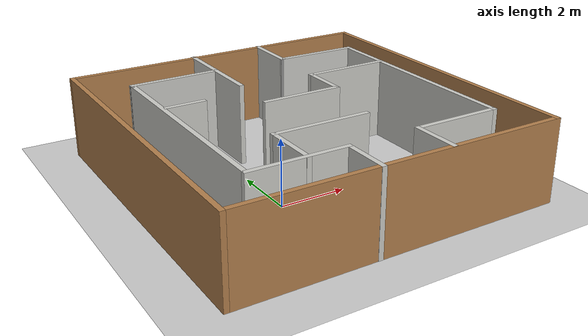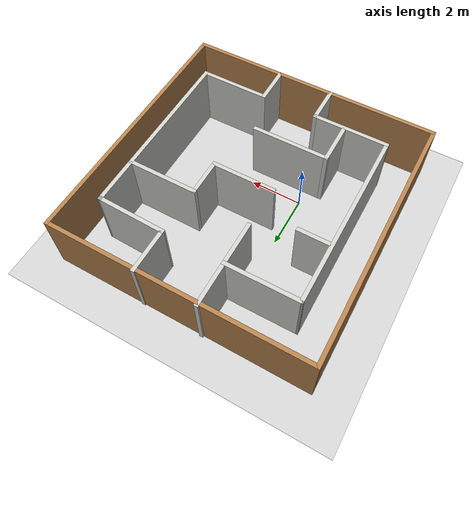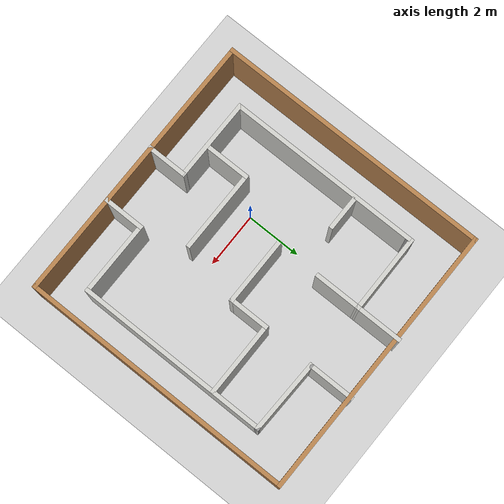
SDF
<?xml version="1.0" ?>
<sdf version="1.6">
  <world name="maze_model_world">
    <!-- include the maze model -->
    <include>
      <uri>model://maze_model</uri>
    </include>

    <!-- add a ground plane so the robot has a surface to spawn on -->
    <include>
      <uri>model://ground_plane</uri>
    </include>

    <!-- optional sun for lighting -->
    <include>
      <uri>model://sun</uri>
    </include>
  </world>
</sdf>

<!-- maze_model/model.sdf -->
<sdf version='1.7'>
  <model name='maze_model'>
    <pose>1.38886 1.37079 0 0 -0 0</pose>
    <link name='Wall_10'>
      <collision name='Wall_10_Collision'>
        <geometry>
          <box>
            <size>1.75 0.15 2.5</size>
          </box>
        </geometry>
        <pose>0 0 1.25 0 -0 0</pose>
      </collision>
      <visual name='Wall_10_Visual'>
        <pose>0 0 1.25 0 -0 0</pose>
        <geometry>
          <box>
            <size>1.75 0.15 2.5</size>
          </box>
        </geometry>
        <material>
          <script>
            <uri>file://media/materials/scripts/gazebo.material</uri>
            <name>Gazebo/CeilingTiled</name>
          </script>
          <ambient>1 1 1 1</ambient>
        </material>
        <meta>
          <layer>0</layer>
        </meta>
      </visual>
      <pose>1.43677 4.13293 0 0 -0 -1.5708</pose>
    </link>
    <link name='Wall_11'>
      <collision name='Wall_11_Collision'>
        <geometry>
          <box>
            <size>0.16 0.15 2.5</size>
          </box>
        </geometry>
        <pose>0 0 1.25 0 -0 0</pose>
      </collision>
      <visual name='Wall_11_Visual'>
        <pose>0 0 1.25 0 -0 0</pose>
        <geometry>
          <box>
            <size>0.16 0.15 2.5</size>
          </box>
        </geometry>
        <material>
          <script>
            <uri>file://media/materials/scripts/gazebo.material</uri>
            <name>Gazebo/Grey</name>
          </script>
          <ambient>1 1 1 1</ambient>
        </material>
        <meta>
          <layer>0</layer>
        </meta>
      </visual>
      <pose>1.44177 3.33292 0 0 -0 0</pose>
    </link>
    <link name='Wall_17'>
      <collision name='Wall_17_Collision'>
        <geometry>
          <box>
            <size>1.5 0.15 2.5</size>
          </box>
        </geometry>
        <pose>0 0 1.25 0 -0 0</pose>
      </collision>
      <visual name='Wall_17_Visual'>
        <pose>0 0 1.25 0 -0 0</pose>
        <geometry>
          <box>
            <size>1.5 0.15 2.5</size>
          </box>
        </geometry>
        <material>
          <script>
            <uri>file://media/materials/scripts/gazebo.material</uri>
            <name>Gazebo/CeilingTiled</name>
          </script>
          <ambient>1 1 1 1</ambient>
        </material>
        <meta>
          <layer>0</layer>
        </meta>
      </visual>
      <pose>-0.785026 -4.28437 0 0 -0 1.5708</pose>
    </link>
    <link name='Wall_18'>
      <collision name='Wall_18_Collision'>
        <geometry>
          <box>
            <size>3 0.15 2.5</size>
          </box>
        </geometry>
        <pose>0 0 1.25 0 -0 0</pose>
      </collision>
      <visual name='Wall_18_Visual'>
        <pose>0 0 1.25 0 -0 0</pose>
        <geometry>
          <box>
            <size>3 0.15 2.5</size>
          </box>
        </geometry>
        <material>
          <script>
            <uri>file://media/materials/scripts/gazebo.material</uri>
            <name>Gazebo/CeilingTiled</name>
          </script>
          <ambient>1 1 1 1</ambient>
        </material>
        <meta>
          <layer>0</layer>
        </meta>
      </visual>
      <pose>-2.21003 -3.60938 0 0 -0 3.14159</pose>
    </link>
    <link name='Wall_19'>
      <collision name='Wall_19_Collision'>
        <geometry>
          <box>
            <size>7 0.15 2.5</size>
          </box>
        </geometry>
        <pose>0 0 1.25 0 -0 0</pose>
      </collision>
      <visual name='Wall_19_Visual'>
        <pose>0 0 1.25 0 -0 0</pose>
        <geometry>
          <box>
            <size>7 0.15 2.5</size>
          </box>
        </geometry>
        <material>
          <script>
            <uri>file://media/materials/scripts/gazebo.material</uri>
            <name>Gazebo/CeilingTiled</name>
          </script>
          <ambient>1 1 1 1</ambient>
        </material>
        <meta>
          <layer>0</layer>
        </meta>
      </visual>
      <pose>-3.63503 -0.184375 0 0 -0 1.5708</pose>
    </link>
    <link name='Wall_2'>
      <collision name='Wall_2_Collision'>
        <geometry>
          <box>
            <size>10 0.15 2.5</size>
          </box>
        </geometry>
        <pose>0 0 1.25 0 -0 0</pose>
      </collision>
      <visual name='Wall_2_Visual'>
        <pose>0 0 1.25 0 -0 0</pose>
        <geometry>
          <box>
            <size>10 0.15 2.5</size>
          </box>
        </geometry>
        <material>
          <script>
            <uri>file://media/materials/scripts/gazebo.material</uri>
            <name>Gazebo/Wood</name>
          </script>
          <ambient>1 1 1 1</ambient>
        </material>
        <meta>
          <layer>0</layer>
        </meta>
      </visual>
      <pose>-4.925 -0.028025 0 0 -0 -1.5708</pose>
    </link>
    <link name='Wall_20'>
      <collision name='Wall_20_Collision'>
        <geometry>
          <box>
            <size>0.25 0.15 2.5</size>
          </box>
        </geometry>
        <pose>0 0 1.25 0 -0 0</pose>
      </collision>
      <visual name='Wall_20_Visual'>
        <pose>0 0 1.25 0 -0 0</pose>
        <geometry>
          <box>
            <size>0.25 0.15 2.5</size>
          </box>
        </geometry>
        <material>
          <script>
            <uri>file://media/materials/scripts/gazebo.material</uri>
            <name>Gazebo/Grey</name>
          </script>
          <ambient>1 1 1 1</ambient>
        </material>
        <meta>
          <layer>0</layer>
        </meta>
      </visual>
      <pose>-3.63503 3.29062 0 0 -0 1.5708</pose>
    </link>
    <link name='Wall_21'>
      <collision name='Wall_21_Collision'>
        <geometry>
          <box>
            <size>2.86781 0.15 2.5</size>
          </box>
        </geometry>
        <pose>0 0 1.25 0 -0 0</pose>
      </collision>
      <visual name='Wall_21_Visual'>
        <pose>0 0 1.25 0 -0 0</pose>
        <geometry>
          <box>
            <size>2.86781 0.15 2.5</size>
          </box>
        </geometry>
        <material>
          <script>
            <uri>file://media/materials/scripts/gazebo.material</uri>
            <name>Gazebo/CeilingTiled</name>
          </script>
          <ambient>1 1 1 1</ambient>
        </material>
        <meta>
          <layer>0</layer>
        </meta>
      </visual>
      <pose>-2.27615 3.35 0 0 -0 0.006899</pose>
    </link>
    <link name='Wall_23'>
      <collision name='Wall_23_Collision'>
        <geometry>
          <box>
            <size>1.5 0.15 2.5</size>
          </box>
        </geometry>
        <pose>0 0 1.25 0 -0 0</pose>
      </collision>
      <visual name='Wall_23_Visual'>
        <pose>0 0 1.25 0 -0 0</pose>
        <geometry>
          <box>
            <size>1.5 0.15 2.5</size>
          </box>
        </geometry>
        <material>
          <script>
            <uri>file://media/materials/scripts/gazebo.material</uri>
            <name>Gazebo/CeilingTiled</name>
          </script>
          <ambient>1 1 1 1</ambient>
        </material>
        <meta>
          <layer>0</layer>
        </meta>
      </visual>
      <pose>1.38387 -4.25793 0 0 -0 1.5708</pose>
    </link>
    <link name='Wall_24'>
      <collision name='Wall_24_Collision'>
        <geometry>
          <box>
            <size>2.75 0.15 2.5</size>
          </box>
        </geometry>
        <pose>0 0 1.25 0 -0 0</pose>
      </collision>
      <visual name='Wall_24_Visual'>
        <pose>0 0 1.25 0 -0 0</pose>
        <geometry>
          <box>
            <size>2.75 0.15 2.5</size>
          </box>
        </geometry>
        <material>
          <script>
            <uri>file://media/materials/scripts/gazebo.material</uri>
            <name>Gazebo/CeilingTiled</name>
          </script>
          <ambient>1 1 1 1</ambient>
        </material>
        <meta>
          <layer>0</layer>
        </meta>
      </visual>
      <pose>2.68387 -3.58292 0 0 -0 0</pose>
    </link>
    <link name='Wall_28'>
      <collision name='Wall_28_Collision'>
        <geometry>
          <box>
            <size>7 0.15 2.5</size>
          </box>
        </geometry>
        <pose>0 0 1.25 0 -0 0</pose>
      </collision>
      <visual name='Wall_28_Visual'>
        <pose>0 0 1.25 0 -0 0</pose>
        <geometry>
          <box>
            <size>7 0.15 2.5</size>
          </box>
        </geometry>
        <material>
          <script>
            <uri>file://media/materials/scripts/gazebo.material</uri>
            <name>Gazebo/CeilingTiled</name>
          </script>
          <ambient>1 1 1 1</ambient>
        </material>
        <meta>
          <layer>0</layer>
        </meta>
      </visual>
      <pose>3.98387 -0.157925 0 0 -0 1.5708</pose>
    </link>
    <link name='Wall_29'>
      <collision name='Wall_29_Collision'>
        <geometry>
          <box>
            <size>0.15 0.15 2.5</size>
          </box>
        </geometry>
        <pose>0 0 1.25 0 -0 0</pose>
      </collision>
      <visual name='Wall_29_Visual'>
        <pose>0 0 1.25 0 -0 0</pose>
        <geometry>
          <box>
            <size>0.15 0.15 2.5</size>
          </box>
        </geometry>
        <material>
          <script>
            <uri>file://media/materials/scripts/gazebo.material</uri>
            <name>Gazebo/Grey</name>
          </script>
          <ambient>1 1 1 1</ambient>
        </material>
        <meta>
          <layer>0</layer>
        </meta>
      </visual>
      <pose>3.98387 3.26708 0 0 -0 0</pose>
    </link>
    <link name='Wall_30'>
      <collision name='Wall_30_Collision'>
        <geometry>
          <box>
            <size>0.15 0.15 2.5</size>
          </box>
        </geometry>
        <pose>0 0 1.25 0 -0 0</pose>
      </collision>
      <visual name='Wall_30_Visual'>
        <pose>0 0 1.25 0 -0 0</pose>
        <geometry>
          <box>
            <size>0.15 0.15 2.5</size>
          </box>
        </geometry>
        <material>
          <script>
            <uri>file://media/materials/scripts/gazebo.material</uri>
            <name>Gazebo/Grey</name>
          </script>
          <ambient>1 1 1 1</ambient>
        </material>
        <meta>
          <layer>0</layer>
        </meta>
      </visual>
      <pose>3.98387 3.26708 0 0 -0 0</pose>
    </link>
    <link name='Wall_33'>
      <collision name='Wall_33_Collision'>
        <geometry>
          <box>
            <size>2.69795 0.15 2.5</size>
          </box>
        </geometry>
        <pose>0 0 1.25 0 -0 0</pose>
      </collision>
      <visual name='Wall_33_Visual'>
        <pose>0 0 1.25 0 -0 0</pose>
        <geometry>
          <box>
            <size>2.69795 0.15 2.5</size>
          </box>
        </geometry>
        <material>
          <script>
            <uri>file://media/materials/scripts/gazebo.material</uri>
            <name>Gazebo/CeilingTiled</name>
          </script>
          <ambient>1 1 1 1</ambient>
        </material>
        <meta>
          <layer>0</layer>
        </meta>
      </visual>
      <pose>2.71032 3.3 0 0 -0 3.11574</pose>
    </link>
    <link name='Wall_35'>
      <collision name='Wall_35_Collision'>
        <geometry>
          <box>
            <size>2.75 0.15 2.5</size>
          </box>
        </geometry>
        <pose>0 0 1.25 0 -0 0</pose>
      </collision>
      <visual name='Wall_35_Visual'>
        <pose>0 0 1.25 0 -0 0</pose>
        <geometry>
          <box>
            <size>2.75 0.15 2.5</size>
          </box>
        </geometry>
        <material>
          <script>
            <uri>file://media/materials/scripts/gazebo.material</uri>
            <name>Gazebo/CeilingTiled</name>
          </script>
          <ambient>1 1 1 1</ambient>
        </material>
        <meta>
          <layer>0</layer>
        </meta>
      </visual>
      <pose>2.67433 1.48404 0 0 -0 3.14159</pose>
    </link>
    <link name='Wall_36'>
      <collision name='Wall_36_Collision'>
        <geometry>
          <box>
            <size>1.5 0.15 2.5</size>
          </box>
        </geometry>
        <pose>0 0 1.25 0 -0 0</pose>
      </collision>
      <visual name='Wall_36_Visual'>
        <pose>0 0 1.25 0 -0 0</pose>
        <geometry>
          <box>
            <size>1.5 0.15 2.5</size>
          </box>
        </geometry>
        <material>
          <script>
            <uri>file://media/materials/scripts/gazebo.material</uri>
            <name>Gazebo/CeilingTiled</name>
          </script>
          <ambient>1 1 1 1</ambient>
        </material>
        <meta>
          <layer>0</layer>
        </meta>
      </visual>
      <pose>1.37433 0.809039 0 0 -0 -1.5708</pose>
    </link>
    <link name='Wall_37'>
      <collision name='Wall_37_Collision'>
        <geometry>
          <box>
            <size>2.5 0.15 2.5</size>
          </box>
        </geometry>
        <pose>0 0 1.25 0 -0 0</pose>
      </collision>
      <visual name='Wall_37_Visual'>
        <pose>0 0 1.25 0 -0 0</pose>
        <geometry>
          <box>
            <size>2.5 0.15 2.5</size>
          </box>
        </geometry>
        <material>
          <script>
            <uri>file://media/materials/scripts/gazebo.material</uri>
            <name>Gazebo/CeilingTiled</name>
          </script>
          <ambient>1 1 1 1</ambient>
        </material>
        <meta>
          <layer>0</layer>
        </meta>
      </visual>
      <pose>0.199333 0.134039 0 0 -0 3.14159</pose>
    </link>
    <link name='Wall_39'>
      <collision name='Wall_39_Collision'>
        <geometry>
          <box>
            <size>1.75 0.15 2.5</size>
          </box>
        </geometry>
        <pose>0 0 1.25 0 -0 0</pose>
      </collision>
      <visual name='Wall_39_Visual'>
        <pose>0 0 1.25 0 -0 0</pose>
        <geometry>
          <box>
            <size>1.75 0.15 2.5</size>
          </box>
        </geometry>
        <material>
          <script>
            <uri>file://media/materials/scripts/gazebo.material</uri>
            <name>Gazebo/CeilingTiled</name>
          </script>
          <ambient>1 1 1 1</ambient>
        </material>
        <meta>
          <layer>0</layer>
        </meta>
      </visual>
      <pose>-0.917276 2.55938 0 0 -0 -1.5708</pose>
    </link>
    <link name='Wall_4'>
      <collision name='Wall_4_Collision'>
        <geometry>
          <box>
            <size>10 0.15 2.5</size>
          </box>
        </geometry>
        <pose>0 0 1.25 0 -0 0</pose>
      </collision>
      <visual name='Wall_4_Visual'>
        <pose>0 0 1.25 0 -0 0</pose>
        <geometry>
          <box>
            <size>10 0.15 2.5</size>
          </box>
        </geometry>
        <material>
          <script>
            <uri>file://media/materials/scripts/gazebo.material</uri>
            <name>Gazebo/Wood</name>
          </script>
          <ambient>1 1 1 1</ambient>
        </material>
        <meta>
          <layer>0</layer>
        </meta>
      </visual>
      <pose>-0 4.89698 0 0 -0 0</pose>
    </link>
    <link name='Wall_43'>
      <collision name='Wall_43_Collision'>
        <geometry>
          <box>
            <size>3 0.15 2.5</size>
          </box>
        </geometry>
        <pose>0 0 1.25 0 -0 0</pose>
      </collision>
      <visual name='Wall_43_Visual'>
        <pose>0 0 1.25 0 -0 0</pose>
        <geometry>
          <box>
            <size>3 0.15 2.5</size>
          </box>
        </geometry>
        <material>
          <script>
            <uri>file://media/materials/scripts/gazebo.material</uri>
            <name>Gazebo/CeilingTiled</name>
          </script>
          <ambient>1 1 1 1</ambient>
        </material>
        <meta>
          <layer>0</layer>
        </meta>
      </visual>
      <pose>-0.548493 -2.01161 0 0 -0 0</pose>
    </link>
    <link name='Wall_45'>
      <collision name='Wall_45_Collision'>
        <geometry>
          <box>
            <size>1.25 0.15 2.5</size>
          </box>
        </geometry>
        <pose>0 0 1.25 0 -0 0</pose>
      </collision>
      <visual name='Wall_45_Visual'>
        <pose>0 0 1.25 0 -0 0</pose>
        <geometry>
          <box>
            <size>1.25 0.15 2.5</size>
          </box>
        </geometry>
        <material>
          <script>
            <uri>file://media/materials/scripts/gazebo.material</uri>
            <name>Gazebo/CeilingTiled</name>
          </script>
          <ambient>1 1 1 1</ambient>
        </material>
        <meta>
          <layer>0</layer>
        </meta>
      </visual>
      <pose>-2.97132 1.11882 0 0 -0 0</pose>
    </link>
    <link name='Wall_47'>
      <collision name='Wall_47_Collision'>
        <geometry>
          <box>
            <size>1.75 0.15 2.5</size>
          </box>
        </geometry>
        <pose>0 0 1.25 0 -0 0</pose>
      </collision>
      <visual name='Wall_47_Visual'>
        <pose>0 0 1.25 0 -0 0</pose>
        <geometry>
          <box>
            <size>1.75 0.15 2.5</size>
          </box>
        </geometry>
        <material>
          <script>
            <uri>file://media/materials/scripts/gazebo.material</uri>
            <name>Gazebo/CeilingTiled</name>
          </script>
          <ambient>1 1 1 1</ambient>
        </material>
        <meta>
          <layer>0</layer>
        </meta>
      </visual>
      <pose>-1.97349 -2.81161 0 0 -0 -1.5708</pose>
    </link>
    <link name='Wall_5'>
      <collision name='Wall_5_Collision'>
        <geometry>
          <box>
            <size>10 0.15 2.5</size>
          </box>
        </geometry>
        <pose>0 0 1.25 0 -0 0</pose>
      </collision>
      <visual name='Wall_5_Visual'>
        <pose>0 0 1.25 0 -0 0</pose>
        <geometry>
          <box>
            <size>10 0.15 2.5</size>
          </box>
        </geometry>
        <material>
          <script>
            <uri>file://media/materials/scripts/gazebo.material</uri>
            <name>Gazebo/Wood</name>
          </script>
          <ambient>1 1 1 1</ambient>
        </material>
        <meta>
          <layer>0</layer>
        </meta>
      </visual>
      <pose>4.925 -0.028025 0 0 -0 -1.5708</pose>
    </link>
    <link name='Wall_6'>
      <collision name='Wall_6_Collision'>
        <geometry>
          <box>
            <size>10 0.15 2.5</size>
          </box>
        </geometry>
        <pose>0 0 1.25 0 -0 0</pose>
      </collision>
      <visual name='Wall_6_Visual'>
        <pose>0 0 1.25 0 -0 0</pose>
        <geometry>
          <box>
            <size>10 0.15 2.5</size>
          </box>
        </geometry>
        <material>
          <script>
            <uri>file://media/materials/scripts/gazebo.material</uri>
            <name>Gazebo/Wood</name>
          </script>
          <ambient>1 1 1 1</ambient>
        </material>
        <meta>
          <layer>0</layer>
        </meta>
      </visual>
      <pose>-0 -4.95303 0 0 -0 3.14159</pose>
    </link>
    <link name='Wall_8'>
      <collision name='Wall_8_Collision'>
        <geometry>
          <box>
            <size>1.75 0.15 2.5</size>
          </box>
        </geometry>
        <pose>0 0 1.25 0 -0 0</pose>
      </collision>
      <visual name='Wall_8_Visual'>
        <pose>0 0 1.25 0 -0 0</pose>
        <geometry>
          <box>
            <size>1.75 0.15 2.5</size>
          </box>
        </geometry>
        <material>
          <script>
            <uri>file://media/materials/scripts/gazebo.material</uri>
            <name>Gazebo/CeilingTiled</name>
          </script>
          <ambient>1 1 1 1</ambient>
        </material>
        <meta>
          <layer>0</layer>
        </meta>
      </visual>
      <pose>-0.917276 4.15937 0 0 -0 -1.5708</pose>
    </link>
    <static>1</static>
  </model>
</sdf>
